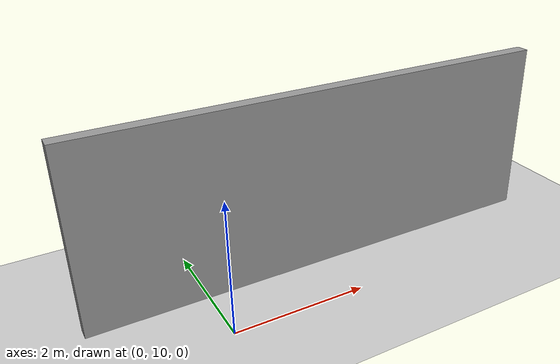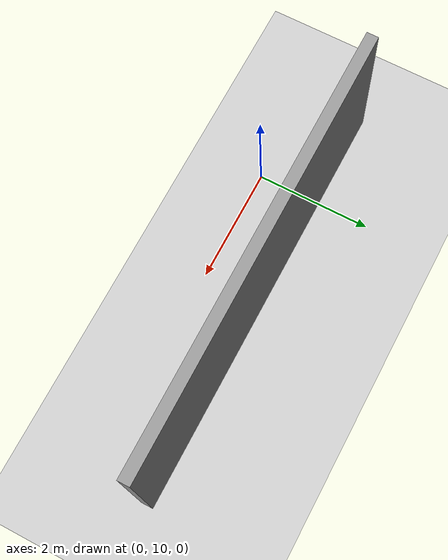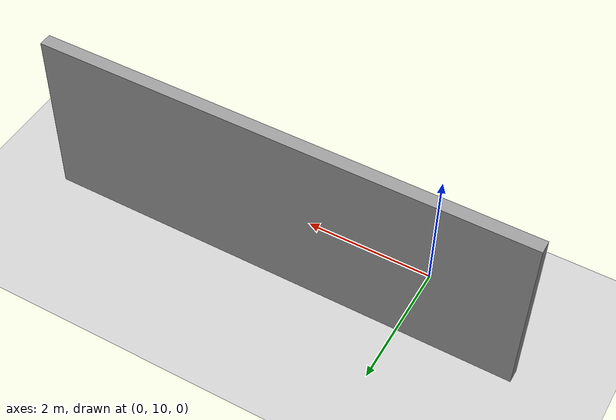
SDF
<sdf version="1.4">
 <world name="default">
  <model name="ground_plane">
   <static>1</static>
   <link name="link">
    <collision name="collision">
     <geometry><plane><normal>0 0 1</normal><size>100 100</size></plane></geometry>
     <surface><friction><ode><mu>100</mu><mu2>50</mu2></ode></friction></surface>
    </collision>
    <visual name="visual">
     <cast_shadows>0</cast_shadows>
     <geometry><plane><normal>0 0 1</normal><size>100 100</size></plane></geometry>
     <material>
      <script><uri>file://media/materials/scripts/gazebo.material</uri><name>Gazebo/Grey</name></script>
     </material>
    </visual>
    <velocity_decay><linear>0</linear><angular>0</angular></velocity_decay>
   </link>
  </model>
  <model name="grey_wall">
   <static>1</static>
   <link name="link">
    <pose>0 0 1.4 0 -0 0</pose>
    <collision name="collision"><geometry><box><size>7.5 0.2 2.8</size></box></geometry></collision>
    <visual name="visual">
     <cast_shadows>0</cast_shadows>
     <geometry><box><size>7.5 0.2 2.8</size></box></geometry>
     <material>
      <script>
       <uri>model://grey_wall/materials/scripts</uri>
       <uri>model://grey_wall/materials/textures</uri>
       <name>vrc/grey_wall</name>
      </script>
     </material>
    </visual>
    <velocity_decay><linear>0</linear><angular>0</angular></velocity_decay>
   </link>
   <pose>2 11 0 0 -0 0</pose>
  </model>
 </world>
</sdf>
